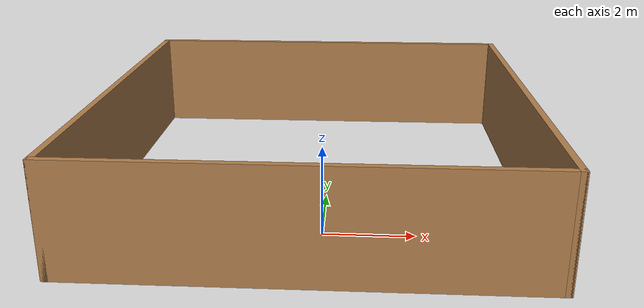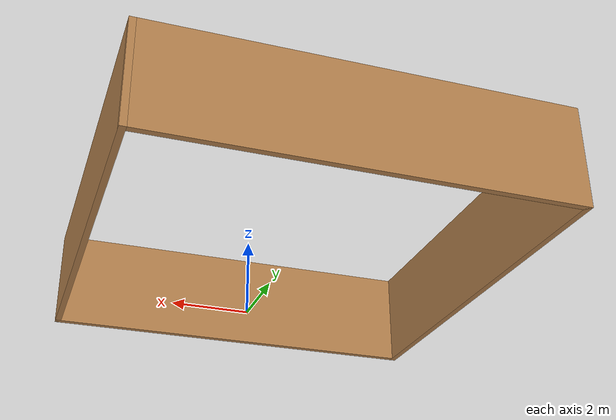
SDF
<?xml version='1.0'?>
<sdf version='1.7'>
  <model name='wall_colored'>
    <pose>-0.269567 2.82548 0 0 -0 0</pose>
    <link name='Wall_15'>
      <collision name='Wall_15_Collision'>
        <geometry>
          <box>
            <size>10.25 0.15 2.5</size>
          </box>
        </geometry>
        <pose>0 0 1.25 0 -0 0</pose>
      </collision>
      <visual name='Wall_15_Visual'>
        <pose>0 0 1.25 0 -0 0</pose>
        <geometry>
          <box>
            <size>10.25 0.15 2.5</size>
          </box>
        </geometry>
        <material>
          <script>
            <uri>file://media/materials/scripts/gazebo.material</uri>
            <name>Gazebo/Wood</name>
          </script>
          <ambient>1 1 1 1</ambient>
        </material>
        <meta>
          <layer>0</layer>
        </meta>
      </visual>
      <pose>-4.925 -0 0 0 -0 -1.5708</pose>
    </link>
    <link name='Wall_16'>
      <collision name='Wall_16_Collision'>
        <geometry>
          <box>
            <size>10 0.15 2.5</size>
          </box>
        </geometry>
        <pose>0 0 1.25 0 -0 0</pose>
      </collision>
      <visual name='Wall_16_Visual'>
        <pose>0 0 1.25 0 -0 0</pose>
        <geometry>
          <box>
            <size>10 0.15 2.5</size>
          </box>
        </geometry>
        <material>
          <script>
            <uri>file://media/materials/scripts/gazebo.material</uri>
            <name>Gazebo/Wood</name>
          </script>
          <ambient>1 1 1 1</ambient>
        </material>
        <meta>
          <layer>0</layer>
        </meta>
      </visual>
      <pose>0 -5.05 0 0 -0 0</pose>
    </link>
    <link name='Wall_17'>
      <collision name='Wall_17_Collision'>
        <geometry>
          <box>
            <size>10.25 0.15 2.5</size>
          </box>
        </geometry>
        <pose>0 0 1.25 0 -0 0</pose>
      </collision>
      <visual name='Wall_17_Visual'>
        <pose>0 0 1.25 0 -0 0</pose>
        <geometry>
          <box>
            <size>10.25 0.15 2.5</size>
          </box>
        </geometry>
        <material>
          <script>
            <uri>file://media/materials/scripts/gazebo.material</uri>
            <name>Gazebo/Wood</name>
          </script>
          <ambient>1 1 1 1</ambient>
        </material>
        <meta>
          <layer>0</layer>
        </meta>
      </visual>
      <pose>4.925 -0 0 0 -0 1.5708</pose>
    </link>
    <link name='Wall_18'>
      <collision name='Wall_18_Collision'>
        <geometry>
          <box>
            <size>10 0.15 2.5</size>
          </box>
        </geometry>
        <pose>0 0 1.25 0 -0 0</pose>
      </collision>
      <visual name='Wall_18_Visual'>
        <pose>0 0 1.25 0 -0 0</pose>
        <geometry>
          <box>
            <size>10 0.15 2.5</size>
          </box>
        </geometry>
        <material>
          <script>
            <uri>file://media/materials/scripts/gazebo.material</uri>
            <name>Gazebo/Wood</name>
          </script>
          <ambient>1 1 1 1</ambient>
        </material>
        <meta>
          <layer>0</layer>
        </meta>
      </visual>
      <pose>0 5.05 0 0 -0 3.14159</pose>
    </link>
    <static>1</static>
  </model>
</sdf>
